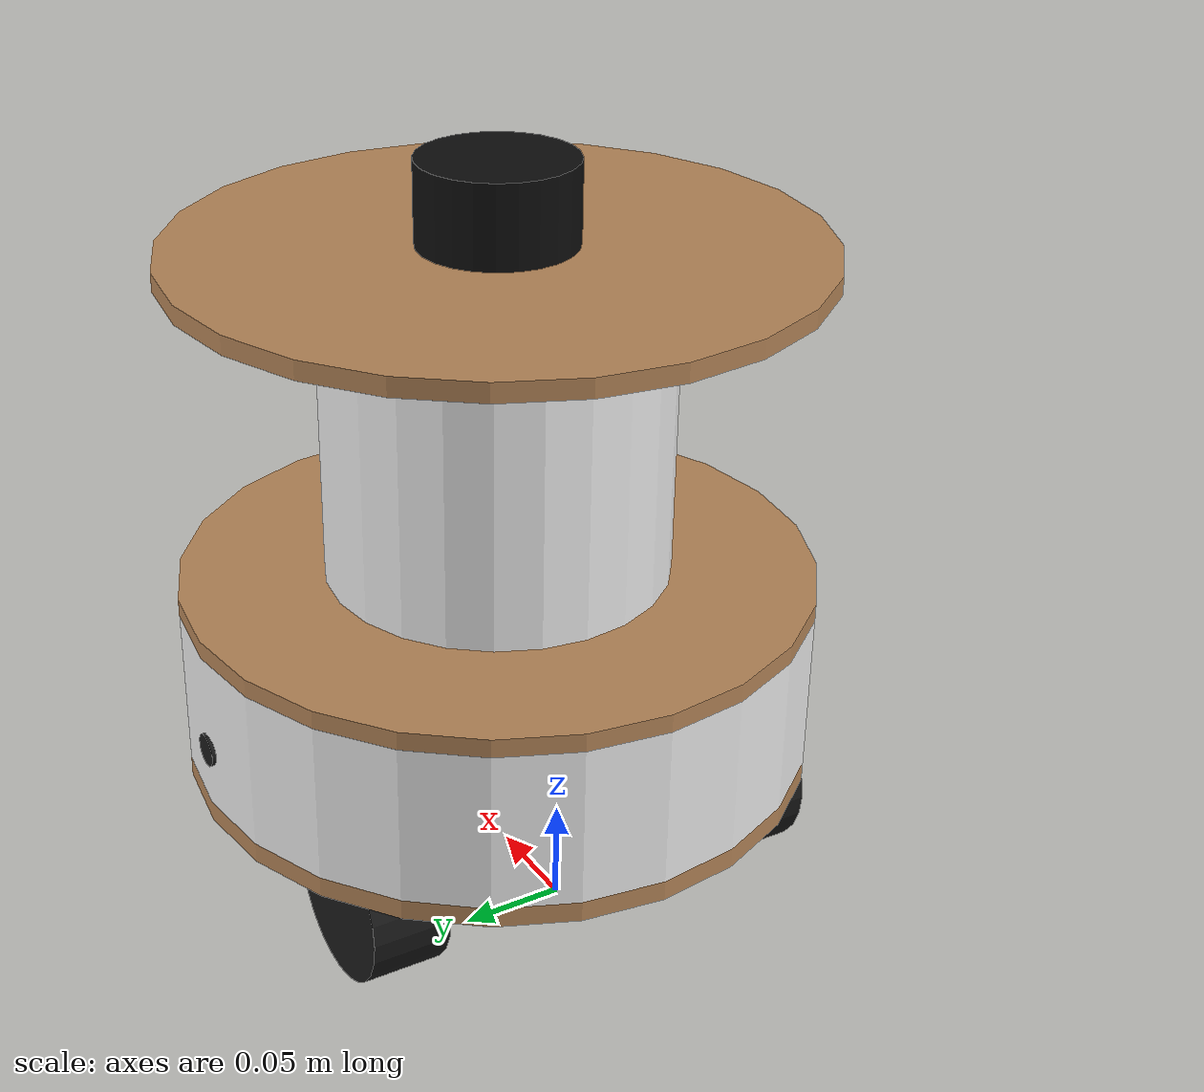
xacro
<?xml version="1.0"?>
<robot xmlns:xacro="http://www.ros.org/wiki/xacro" name="amr_robot">

    <!-- Materials / Appearance for RViz -->
    <material name="wood"><color rgba="0.72 0.53 0.35 1.0"/></material>
    <material name="white_body"><color rgba="0.95 0.95 0.95 1.0"/></material>
    <material name="tire_black"><color rgba="0.1 0.1 0.1 1.0"/></material>
    <material name="caster_metal"><color rgba="0.6 0.6 0.6 1.0"/></material>
    <material name="lidar_black"><color rgba="0.05 0.05 0.05 1.0"/></material>

    <!-- Inertial Helper Macro -->
    <xacro:macro name="cylinder_inertia" params="m r h">
        <inertial>
            <mass value="${m}"/>
            <inertia ixx="${(m/12) * (3*r*r + h*h)}" ixy="0" ixz="0"
                     iyy="${(m/12) * (3*r*r + h*h)}" iyz="0"
                     izz="${(m/2) * (r*r)}"/>
        </inertial>
    </xacro:macro>

    <!-- ==================== BASE FOOTPRINT & KINEMATIC ORIGIN ==================== -->
    <link name="base_footprint"/>

    <joint name="base_joint" type="fixed">
        <parent link="base_footprint"/>
        <child link="base_link"/>
        <origin xyz="0 0 0.06" rpy="0 0 0"/>
    </joint>

    <!-- ==================== LAYER 1: BOTTOM WOODEN PLATE ==================== -->
    <link name="base_link">
        <visual>
            <origin xyz="0.06 0 0.005" rpy="0 0 0"/>
            <geometry>
                <cylinder radius="0.155" length="0.010"/>
            </geometry>
            <material name="wood"/>
        </visual>
        <collision>
            <origin xyz="0.06 0 0.005" rpy="0 0 0"/>
            <geometry>
                <cylinder radius="0.155" length="0.010"/>
            </geometry>
        </collision>
        <inertial>
            <origin xyz="0.06 0 0.005" rpy="0 0 0"/>
            <mass value="0.55"/>
            <inertia ixx="0.0033" ixy="0" ixz="0" iyy="0.0033" iyz="0" izz="0.0066"/>
        </inertial>
    </link>

    <!-- ==================== LOWER WHITE SHROUD ==================== -->
    <link name="lower_shroud">
        <visual>
            <origin xyz="0.06 0 0.040" rpy="0 0 0"/>
            <geometry>
                <cylinder radius="0.155" length="0.080"/>
            </geometry>
            <material name="white_body"/>
        </visual>
        <collision>
            <origin xyz="0.06 0 0.040" rpy="0 0 0"/>
            <geometry>
                <cylinder radius="0.155" length="0.080"/>
            </geometry>
        </collision>
        <inertial>
            <origin xyz="0.06 0 0.040" rpy="0 0 0"/>
            <mass value="0.25"/>
            <inertia ixx="0.0016" ixy="0" ixz="0" iyy="0.0016" iyz="0" izz="0.0030"/>
        </inertial>
    </link>

    <joint name="lower_shroud_joint" type="fixed">
        <parent link="base_link"/>
        <child link="lower_shroud"/>
        <origin xyz="0 0 0.010" rpy="0 0 0"/>
    </joint>

    <!-- ==================== LAYER 2: MIDDLE WOODEN PLATE ==================== -->
    <link name="mid_plate">
        <visual>
            <origin xyz="0.06 0 0.0045" rpy="0 0 0"/>
            <geometry>
                <cylinder radius="0.155" length="0.009"/>
            </geometry>
            <material name="wood"/>
        </visual>
        <collision>
            <origin xyz="0.06 0 0.0045" rpy="0 0 0"/>
            <geometry>
                <cylinder radius="0.155" length="0.009"/>
            </geometry>
        </collision>
        <inertial>
            <origin xyz="0.06 0 0.0045" rpy="0 0 0"/>
            <mass value="0.50"/>
            <inertia ixx="0.0030" ixy="0" ixz="0" iyy="0.0030" iyz="0" izz="0.0060"/>
        </inertial>
    </link>

    <joint name="mid_plate_joint" type="fixed">
        <parent link="lower_shroud"/>
        <child link="mid_plate"/>
        <origin xyz="0 0 0.080" rpy="0 0 0"/>
    </joint>

    <!-- ==================== CENTRAL CYLINDER (TOWER COLUMN) ==================== -->
    <link name="central_cylinder">
        <visual>
            <origin xyz="0.06 0 0.077" rpy="0 0 0"/>
            <geometry>
                <cylinder radius="0.0845" length="0.154"/>
            </geometry>
            <material name="white_body"/>
        </visual>
        <collision>
            <origin xyz="0.06 0 0.077" rpy="0 0 0"/>
            <geometry>
                <cylinder radius="0.0845" length="0.154"/>
            </geometry>
        </collision>
        <inertial>
            <origin xyz="0.06 0 0.077" rpy="0 0 0"/>
            <mass value="0.45"/>
            <inertia ixx="0.0017" ixy="0" ixz="0" iyy="0.0017" iyz="0" izz="0.0016"/>
        </inertial>
    </link>

    <joint name="central_cylinder_joint" type="fixed">
        <parent link="mid_plate"/>
        <child link="central_cylinder"/>
        <origin xyz="0 0 0.009" rpy="0 0 0"/>
    </joint>

    <!-- ==================== LAYER 3: TOP WOODEN PLATE ==================== -->
    <link name="top_plate">
        <visual>
            <origin xyz="0.06 0 0.0045" rpy="0 0 0"/>
            <geometry>
                <cylinder radius="0.155" length="0.009"/>
            </geometry>
            <material name="wood"/>
        </visual>
        <collision>
            <origin xyz="0.06 0 0.0045" rpy="0 0 0"/>
            <geometry>
                <cylinder radius="0.155" length="0.009"/>
            </geometry>
        </collision>
        <inertial>
            <origin xyz="0.06 0 0.0045" rpy="0 0 0"/>
            <mass value="0.50"/>
            <inertia ixx="0.0030" ixy="0" ixz="0" iyy="0.0030" iyz="0" izz="0.0060"/>
        </inertial>
    </link>

    <joint name="top_plate_joint" type="fixed">
        <parent link="central_cylinder"/>
        <child link="top_plate"/>
        <origin xyz="0 0 0.154" rpy="0 0 0"/>
    </joint>

    <!-- ==================== 2D LIDAR LINK & JOINT ==================== -->
    <link name="laser_frame">
        <visual>
            <origin xyz="0 0 0" rpy="0 0 0"/>
            <geometry>
                <cylinder radius="0.038" length="0.04"/>
            </geometry>
            <material name="lidar_black"/>
        </visual>
        <collision>
            <origin xyz="0 0 0" rpy="0 0 0"/>
            <geometry>
                <cylinder radius="0.038" length="0.04"/>
            </geometry>
        </collision>
        <inertial>
            <origin xyz="0 0 0" rpy="0 0 0"/>
            <mass value="0.15"/>
            <inertia ixx="0.0001" ixy="0" ixz="0" iyy="0.0001" iyz="0" izz="0.0001"/>
        </inertial>
    </link>

    <joint name="laser_joint" type="fixed">
        <parent link="top_plate"/>
        <child link="laser_frame"/>
        <!-- Centered on top plate (X=0.06), elevated by half lidar height (0.02 + plate thickness 0.009) -->
        <origin xyz="0.06 0 0.029" rpy="0 0 0"/>
    </joint>

    <!-- ==================== DRIVE WHEELS ==================== -->
    <link name="left_wheel">
        <visual>
            <geometry>
                <cylinder radius="0.04" length="0.039"/>
            </geometry>
            <material name="tire_black"/>
        </visual>
        <collision>
            <geometry>
                <cylinder radius="0.04" length="0.039"/>
            </geometry>
        </collision>
        <xacro:cylinder_inertia m="0.25" r="0.04" h="0.039"/>
    </link>

    <joint name="left_wheel_joint" type="continuous">
        <parent link="base_link"/>
        <child link="left_wheel"/>
        <origin xyz="0 0.0995 -0.02" rpy="-1.5708 0 0"/>
        <axis xyz="0 0 1"/>
        <dynamics damping="0.1" friction="0.1"/>
    </joint>

    <link name="right_wheel">
        <visual>
            <geometry>
                <cylinder radius="0.04" length="0.039"/>
            </geometry>
            <material name="tire_black"/>
        </visual>
        <collision>
            <geometry>
                <cylinder radius="0.04" length="0.039"/>
            </geometry>
        </collision>
        <xacro:cylinder_inertia m="0.25" r="0.04" h="0.039"/>
    </link>

    <joint name="right_wheel_joint" type="continuous">
        <parent link="base_link"/>
        <child link="right_wheel"/>
        <origin xyz="0 -0.0995 -0.02" rpy="1.5708 0 0"/>
        <axis xyz="0 0 -1"/>
        <dynamics damping="0.1" friction="0.1"/>
    </joint>

    <!-- ==================== TWO-LINK SWIVEL CASTER ==================== -->
    <link name="caster_swivel">
        <visual>
            <origin xyz="0 0 -0.015" rpy="0 0 0"/>
            <geometry>
                <box size="0.035 0.035 0.030"/>
            </geometry>
            <material name="caster_metal"/>
        </visual>
        <collision>
            <origin xyz="0 0 -0.015" rpy="0 0 0"/>
            <geometry>
                <box size="0.035 0.035 0.030"/>
            </geometry>
        </collision>
        <inertial>
            <mass value="0.10"/>
            <inertia ixx="0.0001" ixy="0" ixz="0" iyy="0.0001" iyz="0" izz="0.0001"/>
        </inertial>
    </link>

    <joint name="caster_swivel_joint" type="continuous">
        <parent link="base_link"/>
        <child link="caster_swivel"/>
        <origin xyz="0.17 0 0" rpy="0 0 0"/>
        <axis xyz="0 0 1"/>
        <dynamics damping="0.01" friction="0.01"/>
    </joint>

    <link name="caster_wheel">
        <visual>
            <geometry>
                <cylinder radius="0.02" length="0.018"/>
            </geometry>
            <material name="tire_black"/>
        </visual>
        <collision>
            <geometry>
                <cylinder radius="0.02" length="0.018"/>
            </geometry>
        </collision>
        <xacro:cylinder_inertia m="0.06" r="0.02" h="0.018"/>
    </link>

    <joint name="caster_wheel_joint" type="continuous">
        <parent link="caster_swivel"/>
        <child link="caster_wheel"/>
        <origin xyz="-0.015 0 -0.04" rpy="-1.5708 0 0"/>
        <axis xyz="0 0 1"/>
        <dynamics damping="0.01" friction="0.01"/>
    </joint>

    <!-- ==================== GAZEBO PHYSICS & MATERIAL PROPERTIES ==================== -->
    <gazebo reference="left_wheel">
        <mu1 value="1.0"/>
        <mu2 value="1.0"/>
        <kp value="10000000.0"/>
        <kd value="1.0"/>
        <material>Gazebo/FlatBlack</material>
    </gazebo>

    <gazebo reference="right_wheel">
        <mu1 value="1.0"/>
        <mu2 value="1.0"/>
        <kp value="10000000.0"/>
        <kd value="1.0"/>
        <material>Gazebo/FlatBlack</material>
    </gazebo>

    <gazebo reference="caster_wheel">
        <mu1 value="0.01"/>
        <mu2 value="0.01"/>
        <material>Gazebo/Black</material>
    </gazebo>

    <gazebo reference="caster_swivel"><material>Gazebo/Grey</material></gazebo>
    <gazebo reference="base_link"><material>Gazebo/Wood</material></gazebo>
    <gazebo reference="mid_plate"><material>Gazebo/Wood</material></gazebo>
    <gazebo reference="top_plate"><material>Gazebo/Wood</material></gazebo>
    <gazebo reference="lower_shroud"><material>Gazebo/White</material></gazebo>
    <gazebo reference="central_cylinder"><material>Gazebo/White</material></gazebo>
    <gazebo reference="laser_frame"><material>Gazebo/FlatBlack</material></gazebo>

    <!-- ==================== GAZEBO DIFFERENTIAL DRIVE PLUGIN ==================== -->
    <gazebo>
        <plugin name="diff_drive_controller" filename="libgazebo_ros_diff_drive.so">
            <update_rate>50</update_rate>
            <left_joint>left_wheel_joint</left_joint>
            <right_joint>right_wheel_joint</right_joint>
            <wheel_separation>0.199</wheel_separation>
            <wheel_diameter>0.080</wheel_diameter>
            <max_wheel_torque>20.0</max_wheel_torque>
            <max_wheel_acceleration>1.0</max_wheel_acceleration>
            <command_topic>cmd_vel</command_topic>
            <publish_odom>true</publish_odom>
            <publish_odom_tf>true</publish_odom_tf>
            <publish_wheel_tf>false</publish_wheel_tf>
            <odometry_topic>odom</odometry_topic>
            <odometry_frame>odom</odometry_frame>
            <robot_base_frame>base_footprint</robot_base_frame>
        </plugin>
    </gazebo>

    <!-- ==================== GAZEBO 2D LIDAR SENSOR PLUGIN ==================== -->
    <gazebo reference="laser_frame">
        <sensor name="laser_sensor" type="ray">
            <pose>0 0 0 0 0 0</pose>
            <visualize>true</visualize>
            <update_rate>10</update_rate>
            <ray>
                <scan>
                    <horizontal>
                        <samples>360</samples>
                        <resolution>1</resolution>
                        <min_angle>-3.14159</min_angle>
                        <max_angle>3.14159</max_angle>
                    </horizontal>
                </scan>
                <range>
                    <!-- Minimum distance from sensor center (prevents detecting the robot's own plate edge) -->
                    <min>0.16</min>
                    <!-- Maximum distance in meters -->
                    <max>12.0</max>
                    <resolution>0.01</resolution>
                </range>
                <noise>
                    <type>gaussian</type>
                    <mean>0.0</mean>
                    <stddev>0.01</stddev>
                </noise>
            </ray>
            <plugin name="lidar_controller" filename="libgazebo_ros_ray_sensor.so">
                <ros>
                    <!-- Remap internal gazebo ray topic to standard ROS /scan -->
                    <remapping>~/out:=scan</remapping>
                </ros>
                <output_type>sensor_msgs/LaserScan</output_type>
                <frame_name>laser_frame</frame_name>
            </plugin>
        </sensor>
    </gazebo>
<!-- ==================== JOINT STATE PUBLISHER ==================== -->
    <gazebo>
        <plugin name="amr_joint_state_publisher" filename="libgazebo_ros_joint_state_publisher.so">
           <ros>
           <remapping>~/out:=joint_states</remapping>
              </ros>
            <update_rate>30</update_rate>
            <joint_name>left_wheel_joint</joint_name>
            <joint_name>right_wheel_joint</joint_name>
            <joint_name>caster_swivel_joint</joint_name>
            <joint_name>caster_wheel_joint</joint_name>
        </plugin>
    </gazebo>
   <!-- ==================== IMU SENSOR ==================== -->
    <link name="imu_link">
        <visual>
            <geometry>
                <box size="0.02 0.02 0.005"/>
            </geometry>
            <material name="tire_black"/>
        </visual>
        <collision>
            <geometry>
                <box size="0.02 0.02 0.005"/>
            </geometry>
        </collision>
        <inertial>
            <mass value="0.1"/>
            <inertia ixx="0.001" ixy="0" ixz="0" iyy="0.001" iyz="0" izz="0.001"/>
        </inertial>
    </link>
<joint name="imu_joint" type="fixed">
    <parent link="base_link"/>
    <child link="imu_link"/>
    <!-- Centered exactly between the drive wheels (X=0, Y=0) -->
    <origin xyz="0 0 0.02" rpy="0 0 0"/>
</joint>
<!-- ==================== GAZEBO IMU PLUGIN ==================== -->
<gazebo reference="imu_link">
    <sensor name="imu_sensor" type="imu">
        <plugin name="imu_plugin" filename="libgazebo_ros_imu_sensor.so">
            <ros>
                <remapping>~/out:=imu/data</remapping>
            </ros>
            <initial_orientation_as_reference>false</initial_orientation_as_reference>
        </plugin>
        <always_on>true</always_on>
        <update_rate>100</update_rate>
        <visualize>true</visualize>
    </sensor>
</gazebo>

 <!-- ==================== ULTRASONIC SENSOR MACRO ==================== -->
    <xacro:macro name="ultrasonic_sensor" params="prefix parent x y z roll pitch yaw topic_name">
        <link name="${prefix}_link">
            <visual>
                <origin xyz="0 0 0" rpy="0 1.5708 0"/>
                <geometry>
                    <cylinder radius="0.008" length="0.002"/>
                </geometry>
                <material name="tire_black"/>
            </visual>
            <collision>
                <origin xyz="0 0 0" rpy="0 1.5708 0"/>
                <geometry>
                    <cylinder radius="0.008" length="0.002"/>
                </geometry>
            </collision>
            <inertial>
                <mass value="0.1"/>
                <inertia ixx="0.001" ixy="0" ixz="0" iyy="0.001" iyz="0" izz="0.001"/>
            </inertial>
        </link>

        <joint name="${prefix}_joint" type="fixed">
            <parent link="${parent}"/>
            <child link="${prefix}_link"/>
            <origin xyz="${x} ${y} ${z}" rpy="${roll} ${pitch} ${yaw}"/>
        </joint>

        <gazebo reference="${prefix}_link">
            <sensor name="${prefix}_sensor" type="ray">
                <pose>0 0 0 0 0 0</pose>
                <visualize>true</visualize>
                <update_rate>20</update_rate>
                <ray>
                    <scan>
                        <horizontal>
                            <samples>5</samples>
                            <resolution>1</resolution>
                            <min_angle>-0.13</min_angle>
                            <max_angle>0.13</max_angle>
                        </horizontal>
                        <vertical>
                            <samples>5</samples>
                            <resolution>1</resolution>
                            <min_angle>-0.13</min_angle>
                            <max_angle>0.13</max_angle>
                        </vertical>
                    </scan>
                    <range>
                        <min>0.02</min>
                        <max>2.0</max>
                        <resolution>0.01</resolution>
                    </range>
                </ray>
                <plugin name="${prefix}_controller" filename="libgazebo_ros_ray_sensor.so">
                    <ros>
                        <remapping>~/out:=${topic_name}</remapping>
                    </ros>
                    <output_type>sensor_msgs/Range</output_type>
                    <radiation_type>ultrasound</radiation_type>
                    <frame_name>${prefix}_link</frame_name>
                </plugin>
            </sensor>
        </gazebo>
    </xacro:macro>

    <!-- ==================== ULTRASONIC SENSOR INSTANCES ==================== -->
    <!-- Front Ultrasonic -->
    <xacro:ultrasonic_sensor
        prefix="sonar_front"
        parent="base_link"
        x="0.215" y="0.0" z="0.04"
        roll="0.0" pitch="0.0" yaw="0.0"
        topic_name="sonar_front/range" />

    <!-- Left Ultrasonic -->
    <xacro:ultrasonic_sensor
        prefix="sonar_left"
        parent="base_link"
        x="0.06" y="0.155" z="0.04"
        roll="0.0" pitch="0.0" yaw="1.5708"
        topic_name="sonar_left/range" />

    <!-- Right Ultrasonic -->
    <xacro:ultrasonic_sensor
        prefix="sonar_right"
        parent="base_link"
        x="0.06" y="-0.155" z="0.04"
        roll="0.0" pitch="0.0" yaw="-1.5708"
        topic_name="sonar_right/range" />

</robot>
